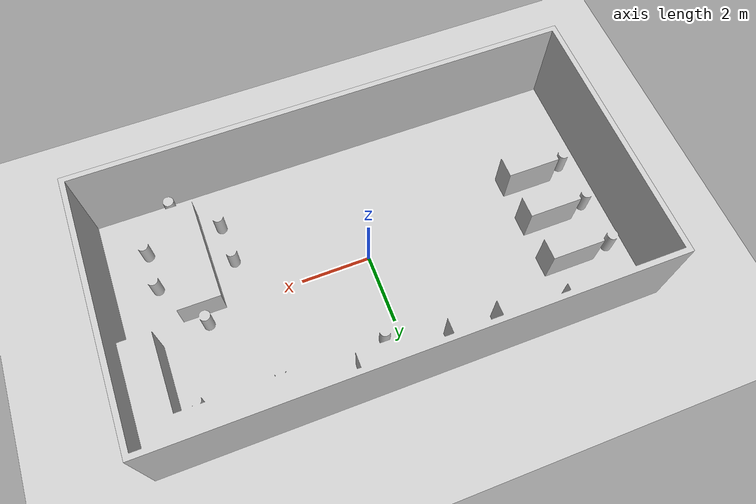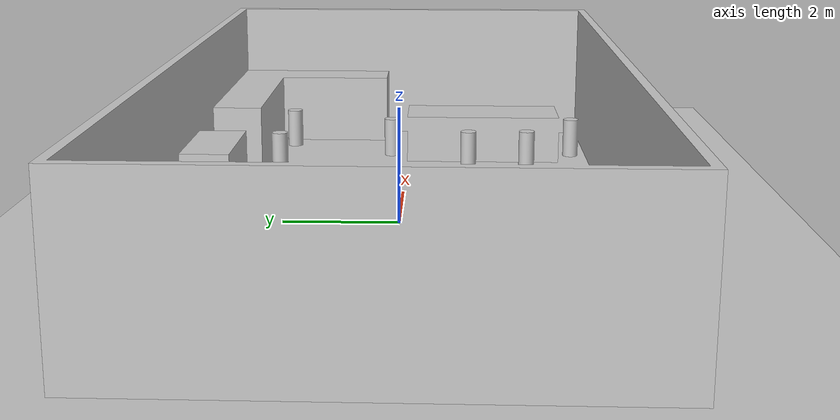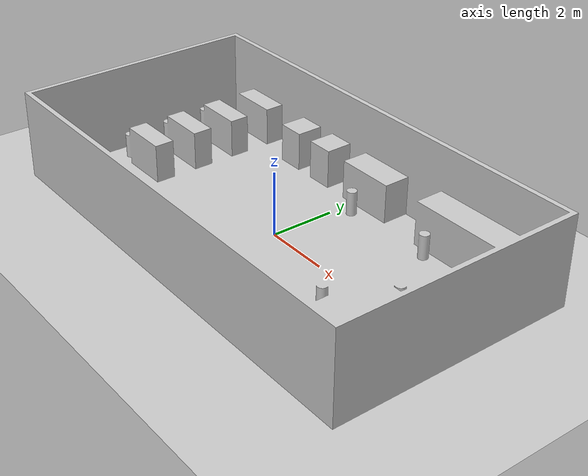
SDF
<?xml version="1.0"?>
<sdf version="1.4">
  <world name="default">

    <include>
      <uri>model://ground_plane</uri>
    </include>
    <scene>
      <ambient>0.6 0.6 0.6 1</ambient>
      <background>0.25 0.25 0.25 1</background>
    </scene>
    <light type="directional" name="some_light1">
      <diffuse>0.7 0.7 0.7 0</diffuse>
      <specular>1 1 1 0</specular>
      <direction>0 0 -1</direction>
      <pose>-3 2 3 0 0 0</pose>
    </light>
    <light type="directional" name="some_light2">
      <diffuse>0.7 0.7 0.7 0</diffuse>
      <specular>1 1 1 0</specular>
      <direction>0 0 -1</direction>
      <pose>0 2 3 0 0 0</pose>
    </light>
    <light type="directional" name="some_light3">
      <diffuse>0.7 0.7 0.7 0</diffuse>
      <specular>1 1 1 0</specular>
      <direction>0 0 -1</direction>
      <pose>3 2 3 0 0 0</pose>
    </light>
    <model name="lab_simple">
      <pose>0 0 0.05  0 0 0</pose>
      <static>true</static>
      <link name="body">
        <visual name="visual">
          <geometry>
            <mesh><uri>/home/larry/catkin_ws/src/sdl-packages/sdl_gazebo/meshes/lab_simple.dae</uri></mesh>
          </geometry>
          <material>
            <ambient> 0.6 0.6 0.6 1.0 </ambient>
            <diffuse> 0.8 0.8 0.8 1.0 </diffuse>
          </material>
        </visual>
        <collision name="collision">
          <geometry>
            <mesh><uri>/home/larry/catkin_ws/src/sdl-packages/sdl_gazebo/meshes/lab_simple.dae</uri></mesh>
          </geometry>
        </collision>
      </link>
    </model>
  </world>
</sdf>
